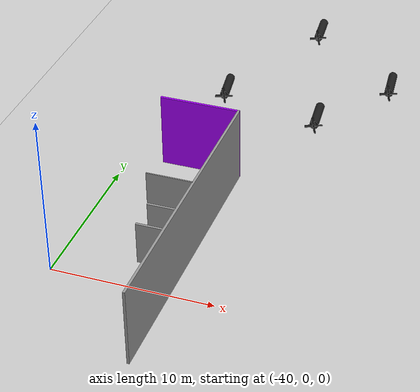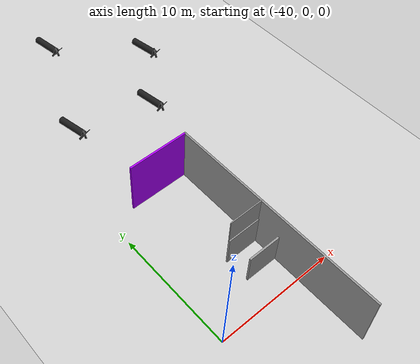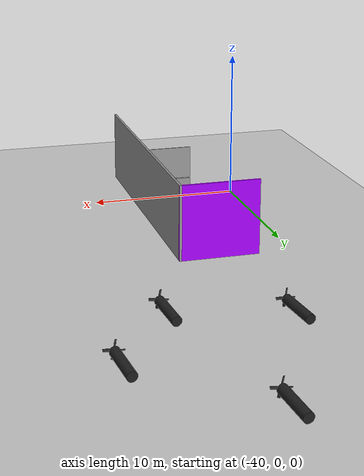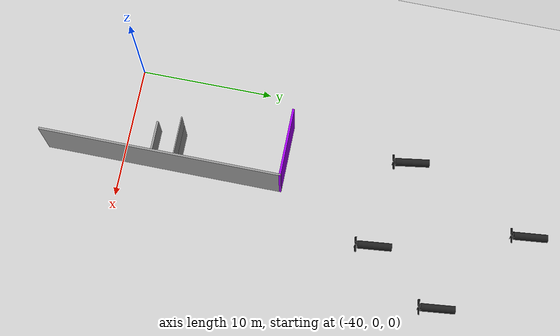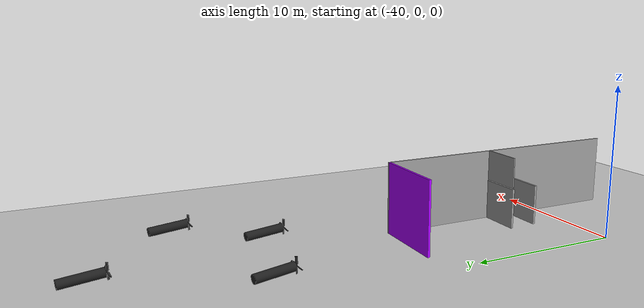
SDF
<sdf version="1.7">
 <world name="default">
  <model name="ground_plane">
   <static>1</static>
   <link name="link">
    <collision name="collision">
     <geometry><plane><normal>0 0 1</normal><size>100 100</size></plane></geometry>
     <surface><friction><ode><mu>100</mu><mu2>50</mu2></ode></friction></surface>
    </collision>
    <visual name="visual">
     <cast_shadows>0</cast_shadows>
     <geometry><plane><normal>0 0 1</normal><size>100 100</size></plane></geometry>
     <material>
      <script><uri>file://media/materials/scripts/gazebo.material</uri><name>Gazebo/Grey</name></script>
     </material>
    </visual>
   </link>
  </model>
  <model name="233333osrf_elevator">
   <link name="Wall_20">
    <pose>5.74253 1.037 0 0 0 -3.1383</pose>
    <visual name="Wall_20_Visual">
     <meta><layer>0</layer></meta>
     <pose>0 0 1.3715 0 -0 0</pose>
     <geometry><box><size>2.88731 0.15 2.743</size></box></geometry>
     <material>
      <script><uri>file://media/materials/scripts/gazebo.material</uri><name>Gazebo/Grey</name></script>
      <ambient>1 1 1 1</ambient>
      <shader type="pixel"/>
     </material>
    </visual>
    <collision name="Wall_20_Collision">
     <pose>0 0 1.3715 0 -0 0</pose>
     <geometry><box><size>2.88731 0.15 2.743</size></box></geometry>
     <surface>
      <friction>
       <ode><mu>1</mu><mu2>1</mu2><fdir1>0 0 0</fdir1><slip1>0</slip1><slip2>0</slip2></ode>
       <torsional>
        <coefficient>1</coefficient>
        <patch_radius>0</patch_radius>
        <surface_radius>0</surface_radius>
        <use_patch_radius>1</use_patch_radius>
        <ode><slip>0</slip></ode>
       </torsional>
      </friction>
      <bounce><restitution_coefficient>0</restitution_coefficient><threshold>1e+06</threshold></bounce>
      <contact>
       <collide_without_contact>0</collide_without_contact>
       <collide_without_contact_bitmask>1</collide_without_contact_bitmask>
       <collide_bitmask>1</collide_bitmask>
       <ode>
        <soft_cfm>0</soft_cfm>
        <soft_erp>0.2</soft_erp>
        <kp>1e+13</kp>
        <kd>1</kd>
        <max_vel>0.01</max_vel>
        <min_depth>0</min_depth>
       </ode>
       <bullet>
        <split_impulse>1</split_impulse>
        <split_impulse_penetration_threshold>-0.01</split_impulse_penetration_threshold>
        <soft_cfm>0</soft_cfm>
        <soft_erp>0.2</soft_erp>
        <kp>1e+13</kp>
        <kd>1</kd>
       </bullet>
      </contact>
     </surface>
    </collision>
   </link>
   <link name="Wall_25">
    <pose>5.76203 -0.932495 0 0 -0 0</pose>
    <visual name="Wall_25_Visual">
     <meta><layer>0</layer></meta>
     <pose>0 0 1.3715 0 -0 0</pose>
     <geometry><box><size>2.75 0.15 2.743</size></box></geometry>
     <material>
      <script><uri>file://media/materials/scripts/gazebo.material</uri><name>Gazebo/Grey</name></script>
      <ambient>1 1 1 1</ambient>
      <shader type="pixel"/>
     </material>
    </visual>
    <collision name="Wall_25_Collision">
     <pose>0 0 1.3715 0 -0 0</pose>
     <geometry><box><size>2.75 0.15 2.743</size></box></geometry>
     <surface>
      <friction>
       <ode><mu>1</mu><mu2>1</mu2><fdir1>0 0 0</fdir1><slip1>0</slip1><slip2>0</slip2></ode>
       <torsional>
        <coefficient>1</coefficient>
        <patch_radius>0</patch_radius>
        <surface_radius>0</surface_radius>
        <use_patch_radius>1</use_patch_radius>
        <ode><slip>0</slip></ode>
       </torsional>
      </friction>
      <bounce><restitution_coefficient>0</restitution_coefficient><threshold>1e+06</threshold></bounce>
      <contact>
       <collide_without_contact>0</collide_without_contact>
       <collide_without_contact_bitmask>1</collide_without_contact_bitmask>
       <collide_bitmask>1</collide_bitmask>
       <ode>
        <soft_cfm>0</soft_cfm>
        <soft_erp>0.2</soft_erp>
        <kp>1e+13</kp>
        <kd>1</kd>
        <max_vel>0.01</max_vel>
        <min_depth>0</min_depth>
       </ode>
       <bullet>
        <split_impulse>1</split_impulse>
        <split_impulse_penetration_threshold>-0.01</split_impulse_penetration_threshold>
        <soft_cfm>0</soft_cfm>
        <soft_erp>0.2</soft_erp>
        <kp>1e+13</kp>
        <kd>1</kd>
       </bullet>
      </contact>
     </surface>
    </collision>
   </link>
   <link name="Wall_36">
    <pose>4.67503 8.9955 0 0 -0 0</pose>
    <visual name="Wall_36_Visual">
     <meta><layer>0</layer></meta>
     <pose>0 0 2.4385 0 -0 0</pose>
     <geometry><box><size>5.17 0.15 4.877</size></box></geometry>
     <material>
      <script><uri>file://media/materials/scripts/gazebo.material</uri><name>Gazebo/Grey</name></script>
      <ambient>0.666667 0 1 1</ambient>
      <shader type="pixel"/>
     </material>
    </visual>
    <collision name="Wall_36_Collision">
     <pose>0 0 2.4385 0 -0 0</pose>
     <geometry><box><size>5.17 0.15 4.877</size></box></geometry>
     <surface>
      <friction>
       <ode><mu>1</mu><mu2>1</mu2><fdir1>0 0 0</fdir1><slip1>0</slip1><slip2>0</slip2></ode>
       <torsional>
        <coefficient>1</coefficient>
        <patch_radius>0</patch_radius>
        <surface_radius>0</surface_radius>
        <use_patch_radius>1</use_patch_radius>
        <ode><slip>0</slip></ode>
       </torsional>
      </friction>
      <bounce><restitution_coefficient>0</restitution_coefficient><threshold>1e+06</threshold></bounce>
      <contact>
       <collide_without_contact>0</collide_without_contact>
       <collide_without_contact_bitmask>1</collide_without_contact_bitmask>
       <collide_bitmask>1</collide_bitmask>
       <ode>
        <soft_cfm>0</soft_cfm>
        <soft_erp>0.2</soft_erp>
        <kp>1e+13</kp>
        <kd>1</kd>
        <max_vel>0.01</max_vel>
        <min_depth>0</min_depth>
       </ode>
       <bullet>
        <split_impulse>1</split_impulse>
        <split_impulse_penetration_threshold>-0.01</split_impulse_penetration_threshold>
        <soft_cfm>0</soft_cfm>
        <soft_erp>0.2</soft_erp>
        <kp>1e+13</kp>
        <kd>1</kd>
       </bullet>
      </contact>
     </surface>
    </collision>
   </link>
   <link name="Wall_5">
    <pose>7.18353 0.013004 0 0 0 -1.57096</pose>
    <visual name="Wall_5_Visual">
     <meta><layer>0</layer></meta>
     <pose>0 0 2.4385 0 -0 0</pose>
     <geometry><box><size>18.1152 0.15 4.877</size></box></geometry>
     <material>
      <script><uri>file://media/materials/scripts/gazebo.material</uri><name>Gazebo/Grey</name></script>
      <ambient>1 1 1 1</ambient>
      <shader type="pixel"/>
     </material>
    </visual>
    <collision name="Wall_5_Collision">
     <pose>0 0 2.4385 0 -0 0</pose>
     <geometry><box><size>18.1152 0.15 4.877</size></box></geometry>
     <surface>
      <friction>
       <ode><mu>1</mu><mu2>1</mu2><fdir1>0 0 0</fdir1><slip1>0</slip1><slip2>0</slip2></ode>
       <torsional>
        <coefficient>1</coefficient>
        <patch_radius>0</patch_radius>
        <surface_radius>0</surface_radius>
        <use_patch_radius>1</use_patch_radius>
        <ode><slip>0</slip></ode>
       </torsional>
      </friction>
      <bounce><restitution_coefficient>0</restitution_coefficient><threshold>1e+06</threshold></bounce>
      <contact>
       <collide_without_contact>0</collide_without_contact>
       <collide_without_contact_bitmask>1</collide_without_contact_bitmask>
       <collide_bitmask>1</collide_bitmask>
       <ode>
        <soft_cfm>0</soft_cfm>
        <soft_erp>0.2</soft_erp>
        <kp>1e+13</kp>
        <kd>1</kd>
        <max_vel>0.01</max_vel>
        <min_depth>0</min_depth>
       </ode>
       <bullet>
        <split_impulse>1</split_impulse>
        <split_impulse_penetration_threshold>-0.01</split_impulse_penetration_threshold>
        <soft_cfm>0</soft_cfm>
        <soft_erp>0.2</soft_erp>
        <kp>1e+13</kp>
        <kd>1</kd>
       </bullet>
      </contact>
     </surface>
    </collision>
   </link>
   <link name="floor1_part6">
    <pose>5.71783 1.06705 3.85828 1.5708 -0 0</pose>
    <visual name="visual">
     <meta><layer>1</layer></meta>
     <geometry><box><size>2.83967 2.0998 0.078</size></box></geometry>
     <material><script><name>Gazebo/Grey</name><uri>__default__</uri></script><shader type="pixel"/></material>
    </visual>
    <collision name="collision">
     <geometry><box><size>2.83967 2.0998 0.078</size></box></geometry>
     <surface>
      <friction>
       <ode><mu>1</mu><mu2>1</mu2><fdir1>0 0 0</fdir1><slip1>0</slip1><slip2>0</slip2></ode>
       <torsional>
        <coefficient>1</coefficient>
        <patch_radius>0</patch_radius>
        <surface_radius>0</surface_radius>
        <use_patch_radius>1</use_patch_radius>
        <ode><slip>0</slip></ode>
       </torsional>
      </friction>
      <bounce><restitution_coefficient>0</restitution_coefficient><threshold>1e+06</threshold></bounce>
      <contact>
       <collide_without_contact>0</collide_without_contact>
       <collide_without_contact_bitmask>1</collide_without_contact_bitmask>
       <collide_bitmask>1</collide_bitmask>
       <ode>
        <soft_cfm>0</soft_cfm>
        <soft_erp>0.2</soft_erp>
        <kp>1e+13</kp>
        <kd>1</kd>
        <max_vel>0.01</max_vel>
        <min_depth>0</min_depth>
       </ode>
       <bullet>
        <split_impulse>1</split_impulse>
        <split_impulse_penetration_threshold>-0.01</split_impulse_penetration_threshold>
        <soft_cfm>0</soft_cfm>
        <soft_erp>0.2</soft_erp>
        <kp>1e+13</kp>
        <kd>1</kd>
       </bullet>
      </contact>
     </surface>
    </collision>
   </link>
   <static>1</static>
   <pose>-39.9417 3.24072 0 0 -0 0</pose>
  </model>
  <model name="submarine_sinking">
   <pose>-36.6222 20.5857 0.459063 1.50745 -0.1126 0.171767</pose>
   <link name="body">
    <pose>0 0 -1.07935 0 -0 0</pose>
    <inertial>
     <mass>1102.7</mass>
     <inertia><ixx>645.998</ixx><ixy>0</ixy><ixz>0</ixz><iyy>645.998</iyy><iyz>0</iyz><izz>49.6215</izz></inertia>
    </inertial>
    <visual name="body_visual">
     <geometry><cylinder><radius>0.3</radius><length>2.6</length></cylinder></geometry>
     <material>
      <script><uri>file://media/materials/scripts/gazebo.material</uri><name>Gazebo/Black</name></script>
     </material>
    </visual>
    <collision name="body_collision">
     <geometry><cylinder><radius>0.3</radius><length>2.6</length></cylinder></geometry>
    </collision>
    <visual name="spacer_visual">
     <pose>0 0 1.37855 0 -0 0</pose>
     <geometry><cylinder><radius>0.0933402</radius><length>0.127211</length></cylinder></geometry>
     <material>
      <script><uri>file://media/materials/scripts/gazebo.material</uri><name>Gazebo/Black</name></script>
     </material>
    </visual>
   </link>
   <link name="propeller">
    <pose>0 0 0.3455 3.14159 -0 0</pose>
    <inertial>
     <mass>25.2312</mass>
     <inertia><ixx>0.531907</ixx><ixy>0</ixy><ixz>0</ixz><iyy>0.531907</iyy><iyz>0</iyz><izz>1.0513</izz></inertia>
    </inertial>
    <visual name="blade1_visual">
     <pose>0.34334 0 0 0.785398 -0 0</pose>
     <geometry><box><size>0.5 0.154178 0.05455</size></box></geometry>
     <material>
      <script><uri>file://media/materials/scripts/gazebo.material</uri><name>Gazebo/Black</name></script>
     </material>
    </visual>
    <collision name="blade1_collision">
     <pose>0.34334 0 0 0.785398 -0 0</pose>
     <geometry><box><size>0.5 0.154178 0.05455</size></box></geometry>
    </collision>
    <visual name="blade2_visual">
     <pose>0 0.34334 0 0.785398 0 1.5708</pose>
     <geometry><box><size>0.5 0.154178 0.05455</size></box></geometry>
     <material>
      <script><uri>file://media/materials/scripts/gazebo.material</uri><name>Gazebo/Black</name></script>
     </material>
    </visual>
    <collision name="blade2_collision">
     <pose>0 0.34334 0 0.785398 0 1.5708</pose>
     <geometry><box><size>0.5 0.154178 0.05455</size></box></geometry>
    </collision>
    <visual name="blade3_visual">
     <pose>-0.34334 -0 0 -0.785398 0 0</pose>
     <geometry><box><size>0.5 0.154178 0.05455</size></box></geometry>
     <material>
      <script><uri>file://media/materials/scripts/gazebo.material</uri><name>Gazebo/Black</name></script>
     </material>
    </visual>
    <collision name="blade3_collision">
     <pose>-0.34334 -0 0 -0.785398 0 0</pose>
     <geometry><box><size>0.5 0.154178 0.05455</size></box></geometry>
    </collision>
    <visual name="blade4_visual">
     <pose>-0 -0.34334 0 -0.785398 -0 1.5708</pose>
     <geometry><box><size>0.5 0.154178 0.05455</size></box></geometry>
     <material>
      <script><uri>file://media/materials/scripts/gazebo.material</uri><name>Gazebo/Black</name></script>
     </material>
    </visual>
    <collision name="blade4_collision">
     <pose>-0 -0.34334 0 -0.785398 -0 1.5708</pose>
     <geometry><box><size>0.5 0.154178 0.05455</size></box></geometry>
    </collision>
   </link>
   <joint name="spinning_joint" type="revolute">
    <parent>body</parent>
    <child>propeller</child>
    <axis>
     <xyz expressed_in="__model__">0 0 1</xyz>
     <limit><lower>-1e+12</lower><upper>1e+12</upper><effort>-1</effort><velocity>-1</velocity></limit>
     <dynamics><spring_reference>0</spring_reference><spring_stiffness>0</spring_stiffness></dynamics>
    </axis>
   </joint>
   <plugin name="buoyancy" filename="libBuoyancyPlugin.so"><fluid_density>999.1026</fluid_density></plugin>
  </model>
  <model name="submarine_sinking_0_clone_19">
   <pose>-26.0229 24.4082 0.45906 1.50715 -0.148886 0.125495</pose>
   <link name="body">
    <pose>0 0 -1.07935 0 -0 0</pose>
    <inertial>
     <mass>1102.7</mass>
     <inertia><ixx>645.998</ixx><ixy>0</ixy><ixz>0</ixz><iyy>645.998</iyy><iyz>0</iyz><izz>49.6215</izz></inertia>
    </inertial>
    <visual name="body_visual">
     <geometry><cylinder><radius>0.3</radius><length>2.6</length></cylinder></geometry>
     <material>
      <script><uri>file://media/materials/scripts/gazebo.material</uri><name>Gazebo/Black</name></script>
     </material>
    </visual>
    <collision name="body_collision">
     <geometry><cylinder><radius>0.3</radius><length>2.6</length></cylinder></geometry>
    </collision>
    <visual name="spacer_visual">
     <pose>0 0 1.37855 0 -0 0</pose>
     <geometry><cylinder><radius>0.0933402</radius><length>0.127211</length></cylinder></geometry>
     <material>
      <script><uri>file://media/materials/scripts/gazebo.material</uri><name>Gazebo/Black</name></script>
     </material>
    </visual>
   </link>
   <link name="propeller">
    <pose>0 0 0.3455 3.14159 -0 0</pose>
    <inertial>
     <mass>25.2312</mass>
     <inertia><ixx>0.531907</ixx><ixy>0</ixy><ixz>0</ixz><iyy>0.531907</iyy><iyz>0</iyz><izz>1.0513</izz></inertia>
    </inertial>
    <visual name="blade1_visual">
     <pose>0.34334 0 0 0.785398 -0 0</pose>
     <geometry><box><size>0.5 0.154178 0.05455</size></box></geometry>
     <material>
      <script><uri>file://media/materials/scripts/gazebo.material</uri><name>Gazebo/Black</name></script>
     </material>
    </visual>
    <collision name="blade1_collision">
     <pose>0.34334 0 0 0.785398 -0 0</pose>
     <geometry><box><size>0.5 0.154178 0.05455</size></box></geometry>
    </collision>
    <visual name="blade2_visual">
     <pose>0 0.34334 0 0.785398 0 1.5708</pose>
     <geometry><box><size>0.5 0.154178 0.05455</size></box></geometry>
     <material>
      <script><uri>file://media/materials/scripts/gazebo.material</uri><name>Gazebo/Black</name></script>
     </material>
    </visual>
    <collision name="blade2_collision">
     <pose>0 0.34334 0 0.785398 0 1.5708</pose>
     <geometry><box><size>0.5 0.154178 0.05455</size></box></geometry>
    </collision>
    <visual name="blade3_visual">
     <pose>-0.34334 -0 0 -0.785398 0 0</pose>
     <geometry><box><size>0.5 0.154178 0.05455</size></box></geometry>
     <material>
      <script><uri>file://media/materials/scripts/gazebo.material</uri><name>Gazebo/Black</name></script>
     </material>
    </visual>
    <collision name="blade3_collision">
     <pose>-0.34334 -0 0 -0.785398 0 0</pose>
     <geometry><box><size>0.5 0.154178 0.05455</size></box></geometry>
    </collision>
    <visual name="blade4_visual">
     <pose>-0 -0.34334 0 -0.785398 -0 1.5708</pose>
     <geometry><box><size>0.5 0.154178 0.05455</size></box></geometry>
     <material>
      <script><uri>file://media/materials/scripts/gazebo.material</uri><name>Gazebo/Black</name></script>
     </material>
    </visual>
    <collision name="blade4_collision">
     <pose>-0 -0.34334 0 -0.785398 -0 1.5708</pose>
     <geometry><box><size>0.5 0.154178 0.05455</size></box></geometry>
    </collision>
   </link>
   <joint name="spinning_joint" type="revolute">
    <parent>body</parent>
    <child>propeller</child>
    <axis>
     <xyz expressed_in="__model__">0 0 1</xyz>
     <limit><lower>-1e+12</lower><upper>1e+12</upper><effort>-1</effort><velocity>-1</velocity></limit>
     <dynamics><spring_reference>0</spring_reference><spring_stiffness>0</spring_stiffness></dynamics>
    </axis>
   </joint>
   <plugin name="buoyancy" filename="libBuoyancyPlugin.so"><fluid_density>999.1026</fluid_density></plugin>
  </model>
  <model name="submarine_sinking_0_clone_20">
   <pose>-29.7611 18.9415 0.459063 1.50682 -0.180057 0.127139</pose>
   <link name="body">
    <pose>0 0 -1.07935 0 -0 0</pose>
    <inertial>
     <mass>1102.7</mass>
     <inertia><ixx>645.998</ixx><ixy>0</ixy><ixz>0</ixz><iyy>645.998</iyy><iyz>0</iyz><izz>49.6215</izz></inertia>
    </inertial>
    <visual name="body_visual">
     <geometry><cylinder><radius>0.3</radius><length>2.6</length></cylinder></geometry>
     <material>
      <script><uri>file://media/materials/scripts/gazebo.material</uri><name>Gazebo/Black</name></script>
     </material>
    </visual>
    <collision name="body_collision">
     <geometry><cylinder><radius>0.3</radius><length>2.6</length></cylinder></geometry>
    </collision>
    <visual name="spacer_visual">
     <pose>0 0 1.37855 0 -0 0</pose>
     <geometry><cylinder><radius>0.0933402</radius><length>0.127211</length></cylinder></geometry>
     <material>
      <script><uri>file://media/materials/scripts/gazebo.material</uri><name>Gazebo/Black</name></script>
     </material>
    </visual>
   </link>
   <link name="propeller">
    <pose>0 0 0.3455 3.14159 -0 0</pose>
    <inertial>
     <mass>25.2312</mass>
     <inertia><ixx>0.531907</ixx><ixy>0</ixy><ixz>0</ixz><iyy>0.531907</iyy><iyz>0</iyz><izz>1.0513</izz></inertia>
    </inertial>
    <visual name="blade1_visual">
     <pose>0.34334 0 0 0.785398 -0 0</pose>
     <geometry><box><size>0.5 0.154178 0.05455</size></box></geometry>
     <material>
      <script><uri>file://media/materials/scripts/gazebo.material</uri><name>Gazebo/Black</name></script>
     </material>
    </visual>
    <collision name="blade1_collision">
     <pose>0.34334 0 0 0.785398 -0 0</pose>
     <geometry><box><size>0.5 0.154178 0.05455</size></box></geometry>
    </collision>
    <visual name="blade2_visual">
     <pose>0 0.34334 0 0.785398 0 1.5708</pose>
     <geometry><box><size>0.5 0.154178 0.05455</size></box></geometry>
     <material>
      <script><uri>file://media/materials/scripts/gazebo.material</uri><name>Gazebo/Black</name></script>
     </material>
    </visual>
    <collision name="blade2_collision">
     <pose>0 0.34334 0 0.785398 0 1.5708</pose>
     <geometry><box><size>0.5 0.154178 0.05455</size></box></geometry>
    </collision>
    <visual name="blade3_visual">
     <pose>-0.34334 -0 0 -0.785398 0 0</pose>
     <geometry><box><size>0.5 0.154178 0.05455</size></box></geometry>
     <material>
      <script><uri>file://media/materials/scripts/gazebo.material</uri><name>Gazebo/Black</name></script>
     </material>
    </visual>
    <collision name="blade3_collision">
     <pose>-0.34334 -0 0 -0.785398 0 0</pose>
     <geometry><box><size>0.5 0.154178 0.05455</size></box></geometry>
    </collision>
    <visual name="blade4_visual">
     <pose>-0 -0.34334 0 -0.785398 -0 1.5708</pose>
     <geometry><box><size>0.5 0.154178 0.05455</size></box></geometry>
     <material>
      <script><uri>file://media/materials/scripts/gazebo.material</uri><name>Gazebo/Black</name></script>
     </material>
    </visual>
    <collision name="blade4_collision">
     <pose>-0 -0.34334 0 -0.785398 -0 1.5708</pose>
     <geometry><box><size>0.5 0.154178 0.05455</size></box></geometry>
    </collision>
   </link>
   <joint name="spinning_joint" type="revolute">
    <parent>body</parent>
    <child>propeller</child>
    <axis>
     <xyz expressed_in="__model__">0 0 1</xyz>
     <limit><lower>-1e+12</lower><upper>1e+12</upper><effort>-1</effort><velocity>-1</velocity></limit>
     <dynamics><spring_reference>0</spring_reference><spring_stiffness>0</spring_stiffness></dynamics>
    </axis>
   </joint>
   <plugin name="buoyancy" filename="libBuoyancyPlugin.so"><fluid_density>999.1026</fluid_density></plugin>
  </model>
  <model name="submarine_sinking_0_clone_21">
   <pose>-32.7137 30.2952 0.459063 1.50684 -0.178068 0.127266</pose>
   <link name="body">
    <pose>0 0 -1.07935 0 -0 0</pose>
    <inertial>
     <mass>1102.7</mass>
     <inertia><ixx>645.998</ixx><ixy>0</ixy><ixz>0</ixz><iyy>645.998</iyy><iyz>0</iyz><izz>49.6215</izz></inertia>
    </inertial>
    <visual name="body_visual">
     <geometry><cylinder><radius>0.3</radius><length>2.6</length></cylinder></geometry>
     <material>
      <script><uri>file://media/materials/scripts/gazebo.material</uri><name>Gazebo/Black</name></script>
     </material>
    </visual>
    <collision name="body_collision">
     <geometry><cylinder><radius>0.3</radius><length>2.6</length></cylinder></geometry>
    </collision>
    <visual name="spacer_visual">
     <pose>0 0 1.37855 0 -0 0</pose>
     <geometry><cylinder><radius>0.0933402</radius><length>0.127211</length></cylinder></geometry>
     <material>
      <script><uri>file://media/materials/scripts/gazebo.material</uri><name>Gazebo/Black</name></script>
     </material>
    </visual>
   </link>
   <link name="propeller">
    <pose>0 0 0.3455 3.14159 -0 0</pose>
    <inertial>
     <mass>25.2312</mass>
     <inertia><ixx>0.531907</ixx><ixy>0</ixy><ixz>0</ixz><iyy>0.531907</iyy><iyz>0</iyz><izz>1.0513</izz></inertia>
    </inertial>
    <visual name="blade1_visual">
     <pose>0.34334 0 0 0.785398 -0 0</pose>
     <geometry><box><size>0.5 0.154178 0.05455</size></box></geometry>
     <material>
      <script><uri>file://media/materials/scripts/gazebo.material</uri><name>Gazebo/Black</name></script>
     </material>
    </visual>
    <collision name="blade1_collision">
     <pose>0.34334 0 0 0.785398 -0 0</pose>
     <geometry><box><size>0.5 0.154178 0.05455</size></box></geometry>
    </collision>
    <visual name="blade2_visual">
     <pose>0 0.34334 0 0.785398 0 1.5708</pose>
     <geometry><box><size>0.5 0.154178 0.05455</size></box></geometry>
     <material>
      <script><uri>file://media/materials/scripts/gazebo.material</uri><name>Gazebo/Black</name></script>
     </material>
    </visual>
    <collision name="blade2_collision">
     <pose>0 0.34334 0 0.785398 0 1.5708</pose>
     <geometry><box><size>0.5 0.154178 0.05455</size></box></geometry>
    </collision>
    <visual name="blade3_visual">
     <pose>-0.34334 -0 0 -0.785398 0 0</pose>
     <geometry><box><size>0.5 0.154178 0.05455</size></box></geometry>
     <material>
      <script><uri>file://media/materials/scripts/gazebo.material</uri><name>Gazebo/Black</name></script>
     </material>
    </visual>
    <collision name="blade3_collision">
     <pose>-0.34334 -0 0 -0.785398 0 0</pose>
     <geometry><box><size>0.5 0.154178 0.05455</size></box></geometry>
    </collision>
    <visual name="blade4_visual">
     <pose>-0 -0.34334 0 -0.785398 -0 1.5708</pose>
     <geometry><box><size>0.5 0.154178 0.05455</size></box></geometry>
     <material>
      <script><uri>file://media/materials/scripts/gazebo.material</uri><name>Gazebo/Black</name></script>
     </material>
    </visual>
    <collision name="blade4_collision">
     <pose>-0 -0.34334 0 -0.785398 -0 1.5708</pose>
     <geometry><box><size>0.5 0.154178 0.05455</size></box></geometry>
    </collision>
   </link>
   <joint name="spinning_joint" type="revolute">
    <parent>body</parent>
    <child>propeller</child>
    <axis>
     <xyz expressed_in="__model__">0 0 1</xyz>
     <limit><lower>-1e+12</lower><upper>1e+12</upper><effort>-1</effort><velocity>-1</velocity></limit>
     <dynamics><spring_reference>0</spring_reference><spring_stiffness>0</spring_stiffness></dynamics>
    </axis>
   </joint>
   <plugin name="buoyancy" filename="libBuoyancyPlugin.so"><fluid_density>999.1026</fluid_density></plugin>
  </model>
 </world>
</sdf>
